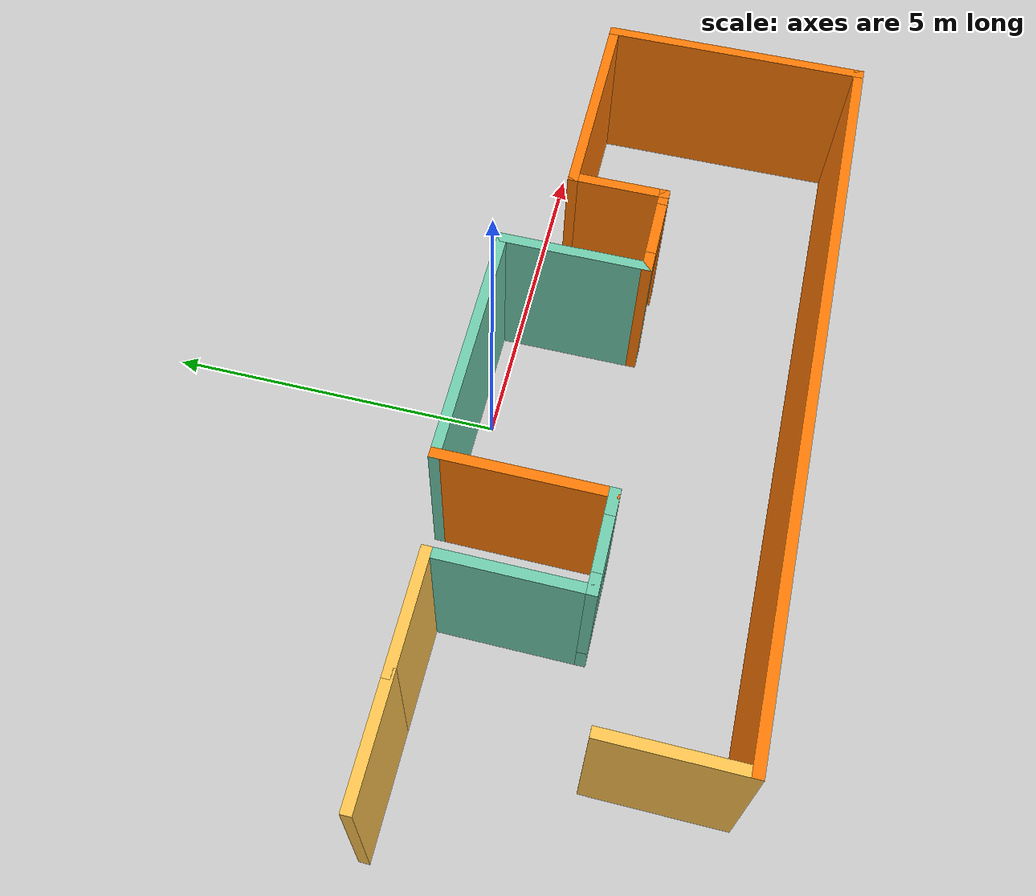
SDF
<?xml version='1.0'?>
<sdf version='1.6'>
  <model name='nbulding'>
    <pose frame=''>-0.14 -2.01 0 0 -0 0</pose>
    <link name='Wall_0'>
      <collision name='Wall_0_Collision'>
        <geometry>
          <box>
            <size>2 0.15 2.5</size>
          </box>
        </geometry>
        <pose frame=''>0 0 1.25 0 -0 0</pose>
      </collision>
      <visual name='Wall_0_Visual'>
        <pose frame=''>0 0 1.25 0 -0 0</pose>
        <geometry>
          <box>
            <size>2 0.15 2.5</size>
          </box>
        </geometry>
        <material>
          <script>
            <uri>file://media/materials/scripts/gazebo.material</uri>
            <name>Gazebo/Grey</name>
          </script>
          <ambient>1 0.764706 0.305882 1</ambient>
        </material>
        <meta>
          <layer>0</layer>
        </meta>
      </visual>
      <pose frame=''>-4.8 -1.375 0 0 0 -1.5708</pose>
    </link>
    <link name='Wall_1'>
      <collision name='Wall_1_Collision'>
        <geometry>
          <box>
            <size>11.25 0.15 2.5</size>
          </box>
        </geometry>
        <pose frame=''>0 0 1.25 0 -0 0</pose>
      </collision>
      <visual name='Wall_1_Visual'>
        <pose frame=''>0 0 1.25 0 -0 0</pose>
        <geometry>
          <box>
            <size>11.25 0.15 2.5</size>
          </box>
        </geometry>
        <material>
          <script>
            <uri>file://media/materials/scripts/gazebo.material</uri>
            <name>Gazebo/Grey</name>
          </script>
          <ambient>0.996078 0.47451 0.0196078 1</ambient>
        </material>
        <meta>
          <layer>0</layer>
        </meta>
      </visual>
      <pose frame=''>0.75 -2.3 0 0 -0 0</pose>
    </link>
    <link name='Wall_10'>
      <collision name='Wall_10_Collision'>
        <geometry>
          <box>
            <size>2.25 0.15 2.5</size>
          </box>
        </geometry>
        <pose frame=''>0 0 1.25 0 -0 0</pose>
      </collision>
      <visual name='Wall_10_Visual'>
        <pose frame=''>0 0 1.25 0 -0 0</pose>
        <geometry>
          <box>
            <size>2.25 0.15 2.5</size>
          </box>
        </geometry>
        <material>
          <script>
            <uri>file://media/materials/scripts/gazebo.material</uri>
            <name>Gazebo/Grey</name>
          </script>
          <ambient>0.435294 0.796078 0.67451 1</ambient>
        </material>
        <meta>
          <layer>0</layer>
        </meta>
      </visual>
      <pose frame=''>-3.1 1 0 0 -0 1.5708</pose>
    </link>
    <link name='Wall_11'>
      <collision name='Wall_11_Collision'>
        <geometry>
          <box>
            <size>1.75 0.15 2.5</size>
          </box>
        </geometry>
        <pose frame=''>0 0 1.25 0 -0 0</pose>
      </collision>
      <visual name='Wall_11_Visual'>
        <pose frame=''>0 0 1.25 0 -0 0</pose>
        <geometry>
          <box>
            <size>1.75 0.15 2.5</size>
          </box>
        </geometry>
        <material>
          <script>
            <uri>file://media/materials/scripts/gazebo.material</uri>
            <name>Gazebo/Grey</name>
          </script>
          <ambient>1 0.764706 0.305882 1</ambient>
        </material>
        <meta>
          <layer>0</layer>
        </meta>
      </visual>
      <pose frame=''>-3.9 2.05 0 0 -0 3.14159</pose>
    </link>
    <link name='Wall_12'>
      <collision name='Wall_12_Collision'>
        <geometry>
          <box>
            <size>1.75 0.15 2.5</size>
          </box>
        </geometry>
        <pose frame=''>0 0 1.25 0 -0 0</pose>
      </collision>
      <visual name='Wall_12_Visual'>
        <pose frame=''>0 0 1.25 0 -0 0</pose>
        <geometry>
          <box>
            <size>1.75 0.15 2.5</size>
          </box>
        </geometry>
        <material>
          <script>
            <uri>file://media/materials/scripts/gazebo.material</uri>
            <name>Gazebo/Grey</name>
          </script>
          <ambient>1 0.764706 0.305882 1</ambient>
        </material>
        <meta>
          <layer>0</layer>
        </meta>
      </visual>
      <pose frame=''>-5.5 2.05 0 0 -0 3.14159</pose>
    </link>
    <link name='Wall_2'>
      <collision name='Wall_2_Collision'>
        <geometry>
          <box>
            <size>4 0.15 2.5</size>
          </box>
        </geometry>
        <pose frame=''>0 0 1.25 0 -0 0</pose>
      </collision>
      <visual name='Wall_2_Visual'>
        <pose frame=''>0 0 1.25 0 -0 0</pose>
        <geometry>
          <box>
            <size>4 0.15 2.5</size>
          </box>
        </geometry>
        <material>
          <script>
            <uri>file://media/materials/scripts/gazebo.material</uri>
            <name>Gazebo/Grey</name>
          </script>
          <ambient>0.996078 0.47451 0.0196078 1</ambient>
        </material>
        <meta>
          <layer>0</layer>
        </meta>
      </visual>
      <pose frame=''>6.3 -0.375 0 0 -0 1.5708</pose>
    </link>
    <link name='Wall_3'>
      <collision name='Wall_3_Collision'>
        <geometry>
          <box>
            <size>3.25 0.15 2.5</size>
          </box>
        </geometry>
        <pose frame=''>0 0 1.25 0 -0 0</pose>
      </collision>
      <visual name='Wall_3_Visual'>
        <pose frame=''>0 0 1.25 0 -0 0</pose>
        <geometry>
          <box>
            <size>3.25 0.15 2.5</size>
          </box>
        </geometry>
        <material>
          <script>
            <uri>file://media/materials/scripts/gazebo.material</uri>
            <name>Gazebo/Grey</name>
          </script>
          <ambient>0.996078 0.47451 0.0196078 1</ambient>
        </material>
        <meta>
          <layer>0</layer>
        </meta>
      </visual>
      <pose frame=''>4.75 1.55 0 0 -0 3.14159</pose>
    </link>
    <link name='Wall_4'>
      <collision name='Wall_4_Collision'>
        <geometry>
          <box>
            <size>1.5 0.15 2.5</size>
          </box>
        </geometry>
        <pose frame=''>0 0 1.25 0 -0 0</pose>
      </collision>
      <visual name='Wall_4_Visual'>
        <pose frame=''>0 0 1.25 0 -0 0</pose>
        <geometry>
          <box>
            <size>1.5 0.15 2.5</size>
          </box>
        </geometry>
        <material>
          <script>
            <uri>file://media/materials/scripts/gazebo.material</uri>
            <name>Gazebo/Grey</name>
          </script>
          <ambient>0.996078 0.47451 0.0196078 1</ambient>
        </material>
        <meta>
          <layer>0</layer>
        </meta>
      </visual>
      <pose frame=''>3.2 0.875 0 0 0 -1.5708</pose>
    </link>
    <link name='Wall_5'>
      <pose frame=''>2.525 0.2 0 0 -0 3.14159</pose>
      <visual name='Wall_5_Visual_0'>
        <pose frame=''>-0.611372 0 1.25 0 -0 0</pose>
        <geometry>
          <box>
            <size>0.277256 0.15 2.5</size>
          </box>
        </geometry>
        <material>
          <script>
            <uri>file://media/materials/scripts/gazebo.material</uri>
            <name>Gazebo/Grey</name>
          </script>
          <ambient>0.996078 0.47451 0.0196078 1</ambient>
        </material>
        <meta>
          <layer>0</layer>
        </meta>
      </visual>
      <collision name='Wall_5_Collision_0'>
        <geometry>
          <box>
            <size>0.277256 0.15 2.5</size>
          </box>
        </geometry>
        <pose frame=''>-0.611372 0 1.25 0 -0 0</pose>
      </collision>
      <visual name='Wall_5_Visual_1'>
        <pose frame=''>0.588628 0 1.25 0 -0 0</pose>
        <geometry>
          <box>
            <size>0.322744 0.15 2.5</size>
          </box>
        </geometry>
        <material>
          <script>
            <uri>file://media/materials/scripts/gazebo.material</uri>
            <name>Gazebo/Grey</name>
          </script>
          <ambient>0.996078 0.47451 0.0196078 1</ambient>
        </material>
        <meta>
          <layer>0</layer>
        </meta>
      </visual>
      <collision name='Wall_5_Collision_1'>
        <geometry>
          <box>
            <size>0.322744 0.15 2.5</size>
          </box>
        </geometry>
        <pose frame=''>0.588628 0 1.25 0 -0 0</pose>
      </collision>
      <visual name='Wall_5_Visual_2'>
        <pose frame=''>-0.022744 0 2.25 0 -0 0</pose>
        <geometry>
          <box>
            <size>0.9 0.15 0.5</size>
          </box>
        </geometry>
        <material>
          <script>
            <uri>file://media/materials/scripts/gazebo.material</uri>
            <name>Gazebo/Grey</name>
          </script>
          <ambient>0.996078 0.47451 0.0196078 1</ambient>
        </material>
        <meta>
          <layer>0</layer>
        </meta>
      </visual>
      <collision name='Wall_5_Collision_2'>
        <geometry>
          <box>
            <size>0.9 0.15 0.5</size>
          </box>
        </geometry>
        <pose frame=''>-0.022744 0 2.25 0 -0 0</pose>
      </collision>
    </link>
    <link name='Wall_6'>
      <collision name='Wall_6_Collision'>
        <geometry>
          <box>
            <size>2.25 0.15 2.5</size>
          </box>
        </geometry>
        <pose frame=''>0 0 1.25 0 -0 0</pose>
      </collision>
      <visual name='Wall_6_Visual'>
        <pose frame=''>0 0 1.25 0 -0 0</pose>
        <geometry>
          <box>
            <size>2.25 0.15 2.5</size>
          </box>
        </geometry>
        <material>
          <script>
            <uri>file://media/materials/scripts/gazebo.material</uri>
            <name>Gazebo/Grey</name>
          </script>
          <ambient>0.435294 0.796078 0.67451 1</ambient>
        </material>
        <meta>
          <layer>0</layer>
        </meta>
      </visual>
      <pose frame=''>1.85 1.25 0 0 -0 1.5708</pose>
    </link>
    <link name='Wall_7'>
      <collision name='Wall_7_Collision'>
        <geometry>
          <box>
            <size>3.75 0.15 2.5</size>
          </box>
        </geometry>
        <pose frame=''>0 0 1.25 0 -0 0</pose>
      </collision>
      <visual name='Wall_7_Visual'>
        <pose frame=''>0 0 1.25 0 -0 0</pose>
        <geometry>
          <box>
            <size>3.75 0.15 2.5</size>
          </box>
        </geometry>
        <material>
          <script>
            <uri>file://media/materials/scripts/gazebo.material</uri>
            <name>Gazebo/Grey</name>
          </script>
          <ambient>0.435294 0.796078 0.67451 1</ambient>
        </material>
        <meta>
          <layer>0</layer>
        </meta>
      </visual>
      <pose frame=''>0.05 2.3 0 0 -0 3.14159</pose>
    </link>
    <link name='Wall_8'>
      <collision name='Wall_8_Collision'>
        <geometry>
          <box>
            <size>2.5 0.15 2.5</size>
          </box>
        </geometry>
        <pose frame=''>0 0 1.25 0 -0 0</pose>
      </collision>
      <visual name='Wall_8_Visual'>
        <pose frame=''>0 0 1.25 0 -0 0</pose>
        <geometry>
          <box>
            <size>2.5 0.15 2.5</size>
          </box>
        </geometry>
        <material>
          <script>
            <uri>file://media/materials/scripts/gazebo.material</uri>
            <name>Gazebo/Grey</name>
          </script>
          <ambient>0.996078 0.47451 0.0196078 1</ambient>
        </material>
        <meta>
          <layer>0</layer>
        </meta>
      </visual>
      <pose frame=''>-1.75 1.125 0 0 0 -1.5708</pose>
    </link>
    <link name='Wall_9'>
      <pose frame=''>-2.425 -0.05 0 0 -0 3.14159</pose>
      <visual name='Wall_9_Visual_0'>
        <pose frame=''>-0.551548 0 1.25 0 -0 0</pose>
        <geometry>
          <box>
            <size>0.396904 0.15 2.5</size>
          </box>
        </geometry>
        <material>
          <script>
            <uri>file://media/materials/scripts/gazebo.material</uri>
            <name>Gazebo/Grey</name>
          </script>
          <ambient>0.435294 0.796078 0.67451 1</ambient>
        </material>
        <meta>
          <layer>0</layer>
        </meta>
      </visual>
      <collision name='Wall_9_Collision_0'>
        <geometry>
          <box>
            <size>0.396904 0.15 2.5</size>
          </box>
        </geometry>
        <pose frame=''>-0.551548 0 1.25 0 -0 0</pose>
      </collision>
      <visual name='Wall_9_Visual_1'>
        <pose frame=''>0.198452 0 0.25 0 -0 0</pose>
        <geometry>
          <box>
            <size>1.1031 0.15 0.5</size>
          </box>
        </geometry>
        <material>
          <script>
            <uri>file://media/materials/scripts/gazebo.material</uri>
            <name>Gazebo/Grey</name>
          </script>
          <ambient>0.435294 0.796078 0.67451 1</ambient>
        </material>
        <meta>
          <layer>0</layer>
        </meta>
      </visual>
      <collision name='Wall_9_Collision_1'>
        <geometry>
          <box>
            <size>1.1031 0.15 0.5</size>
          </box>
        </geometry>
        <pose frame=''>0.198452 0 0.25 0 -0 0</pose>
      </collision>
      <visual name='Wall_9_Visual_2'>
        <pose frame=''>0.598452 0 1.5 0 -0 0</pose>
        <geometry>
          <box>
            <size>0.303096 0.15 2</size>
          </box>
        </geometry>
        <material>
          <script>
            <uri>file://media/materials/scripts/gazebo.material</uri>
            <name>Gazebo/Grey</name>
          </script>
          <ambient>0.435294 0.796078 0.67451 1</ambient>
        </material>
        <meta>
          <layer>0</layer>
        </meta>
      </visual>
      <collision name='Wall_9_Collision_2'>
        <geometry>
          <box>
            <size>0.303096 0.15 2</size>
          </box>
        </geometry>
        <pose frame=''>0.598452 0 1.5 0 -0 0</pose>
      </collision>
      <visual name='Wall_9_Visual_3'>
        <pose frame=''>0.046904 0 1.9 0 -0 0</pose>
        <geometry>
          <box>
            <size>0.8 0.15 1.2</size>
          </box>
        </geometry>
        <material>
          <script>
            <uri>file://media/materials/scripts/gazebo.material</uri>
            <name>Gazebo/Grey</name>
          </script>
          <ambient>0.435294 0.796078 0.67451 1</ambient>
        </material>
        <meta>
          <layer>0</layer>
        </meta>
      </visual>
      <collision name='Wall_9_Collision_3'>
        <geometry>
          <box>
            <size>0.8 0.15 1.2</size>
          </box>
        </geometry>
        <pose frame=''>0.046904 0 1.9 0 -0 0</pose>
      </collision>
    </link>
    <static>1</static>
  </model>
</sdf>
